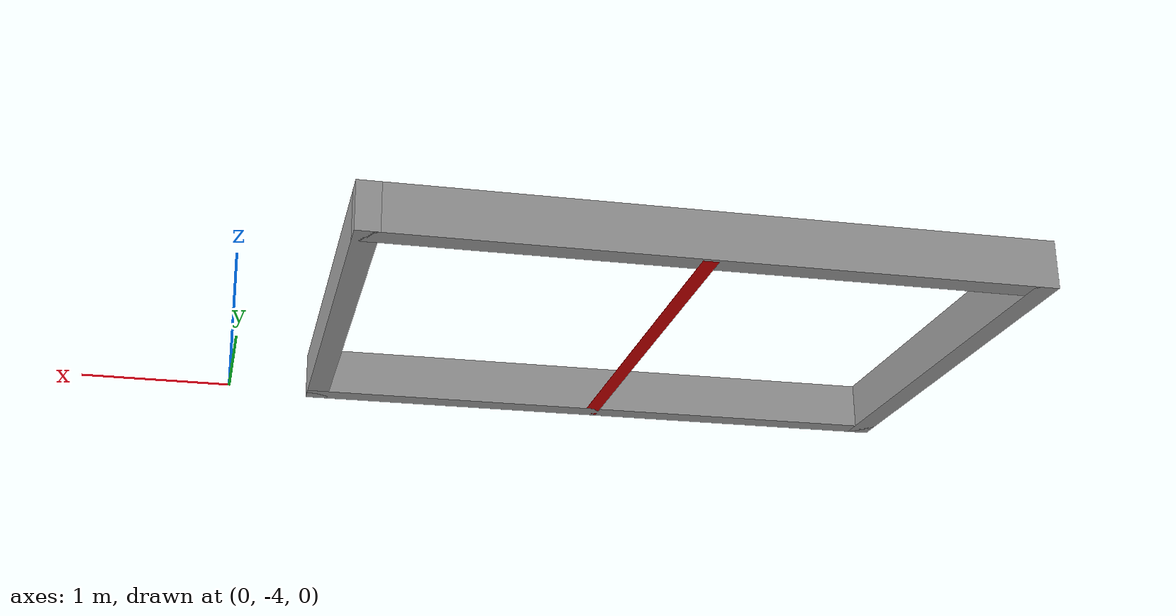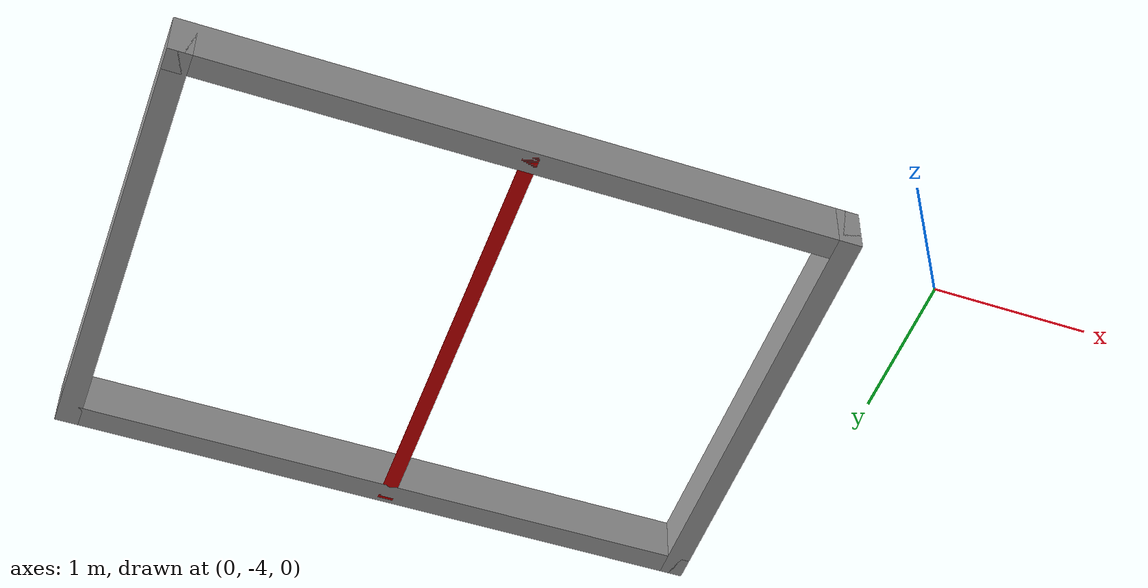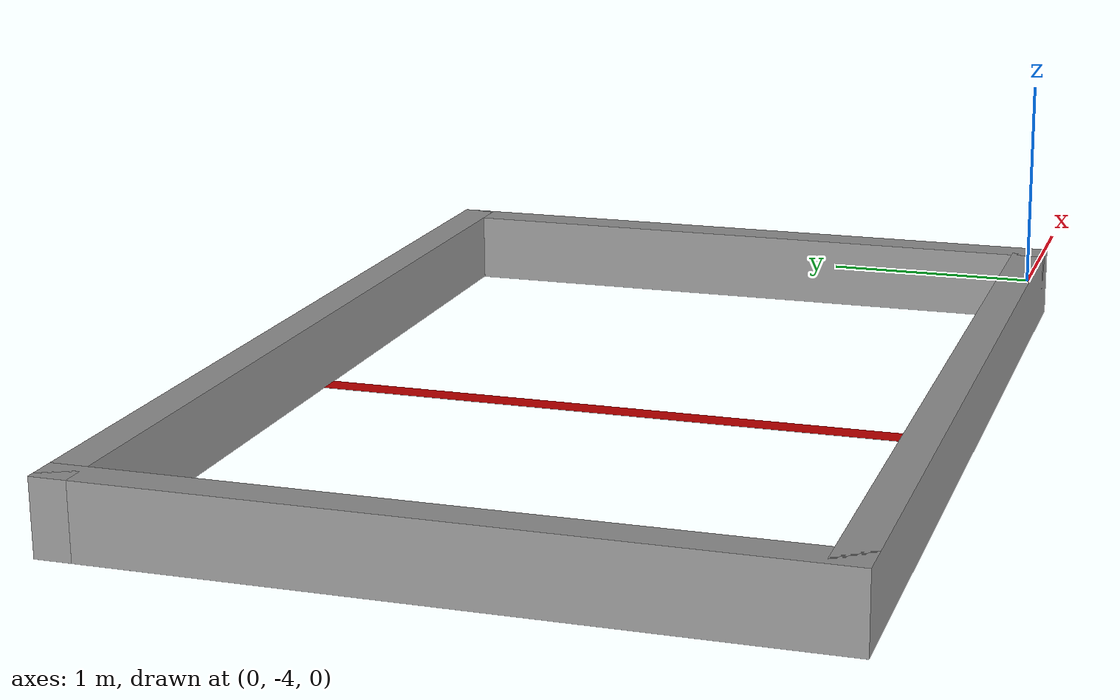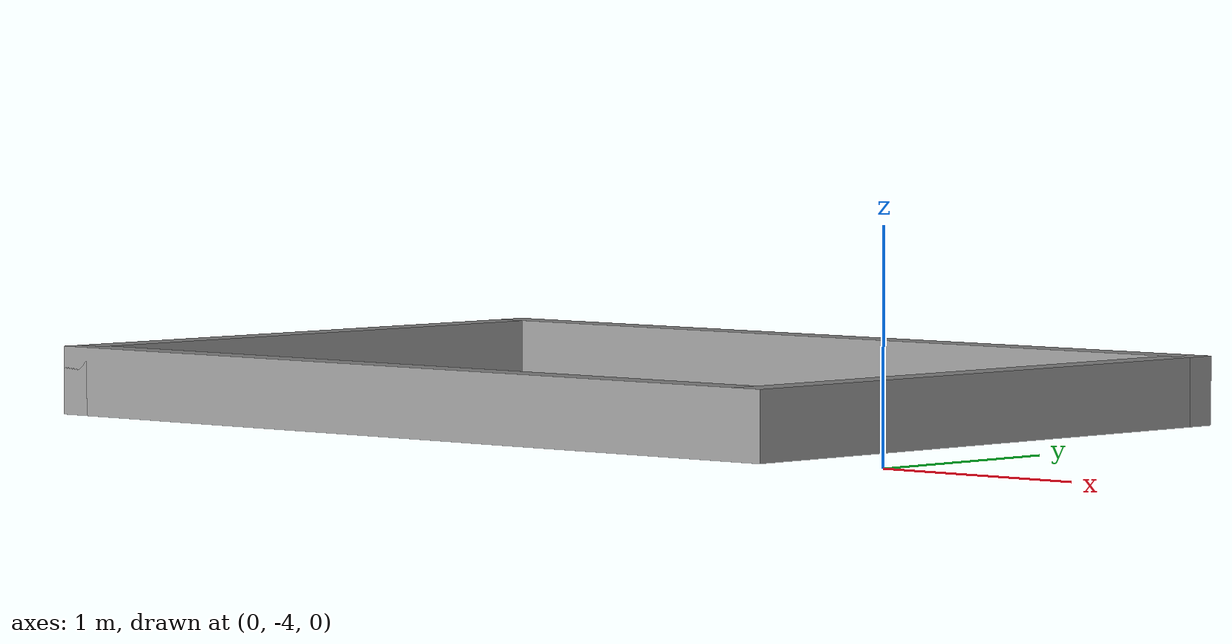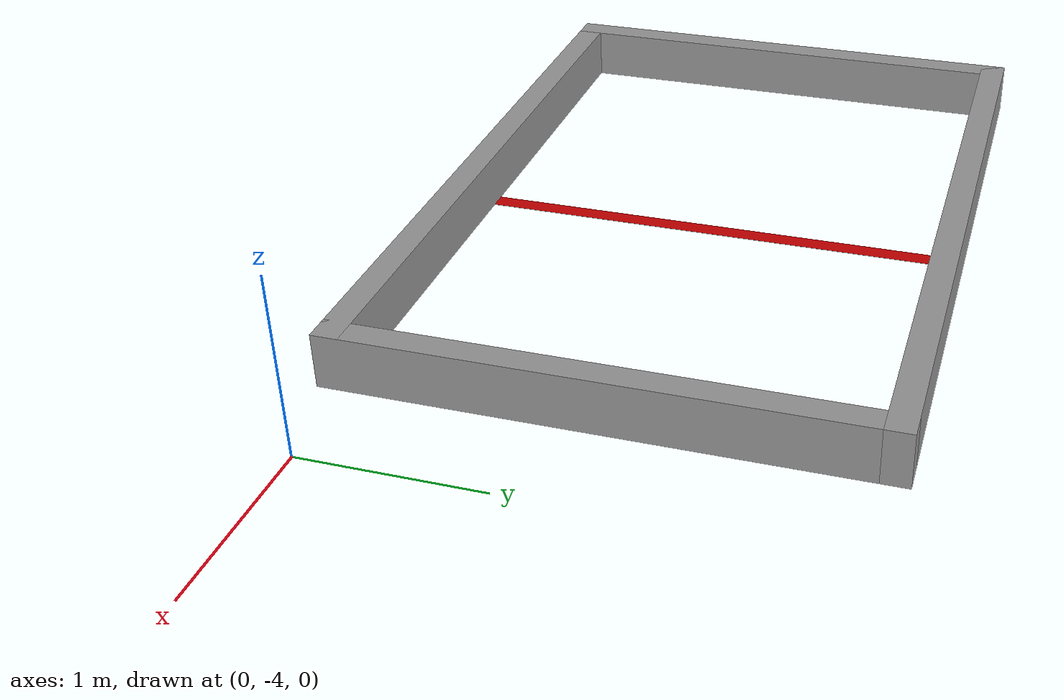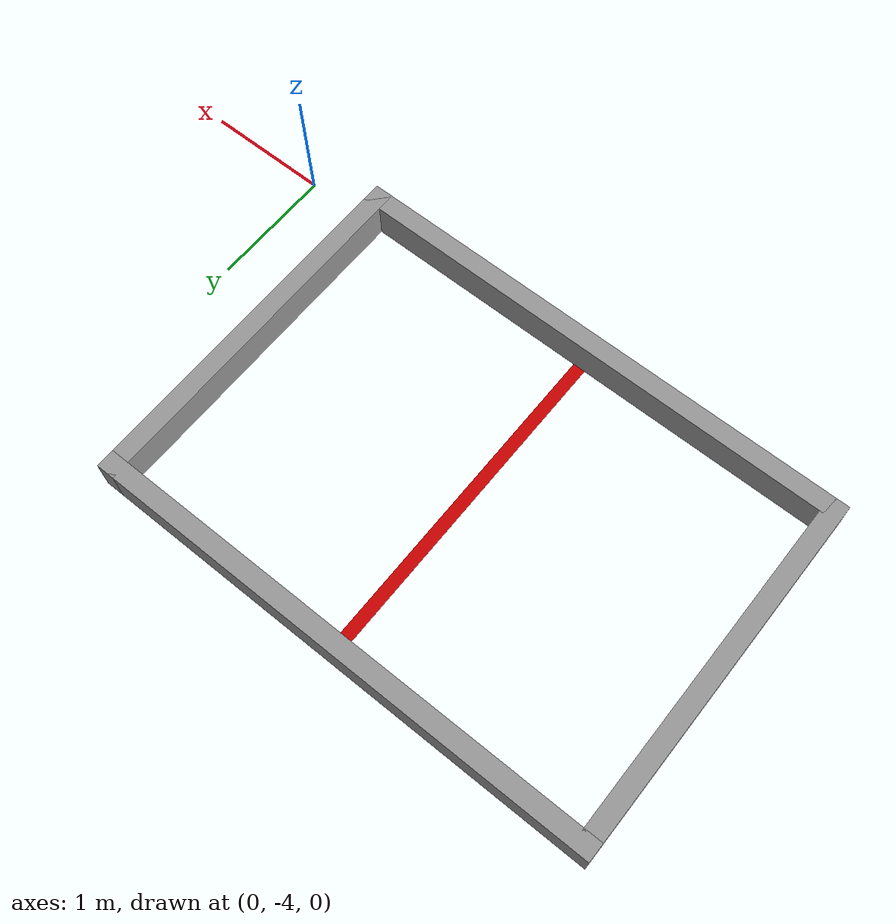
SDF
<?xml version='1.0'?>
<sdf version='1.7'>
  <model name='playground'>
    <pose>-2.3975 -2.0775 0 0 -0 0</pose>
    <link name='Wall_0'>
      <collision name='Wall_0_Collision'>
        <geometry>
          <box>
            <size>3 0.15 0.31</size>
          </box>
        </geometry>
        <pose>0 0 0.155 0 -0 0</pose>
      </collision>
      <visual name='Wall_0_Visual'>
        <pose>0 0 0.155 0 -0 0</pose>
        <geometry>
          <box>
            <size>3 0.15 0.31</size>
          </box>
        </geometry>
        <material>
          <script>
            <uri>file://media/materials/scripts/gazebo.material</uri>
            <name>Gazebo/Grey</name>
          </script>
          <ambient>1 1 1 1</ambient>
        </material>
        <meta>
          <layer>0</layer>
        </meta>
      </visual>
      <pose>-2.3225 -0.5775 0 0 -0 -1.5708</pose>
    </link>
    <link name='Wall_1'>
      <collision name='Wall_1_Collision'>
        <geometry>
          <box>
            <size>4.25 0.15 0.31</size>
          </box>
        </geometry>
        <pose>0 0 0.155 0 -0 0</pose>
      </collision>
      <visual name='Wall_1_Visual'>
        <pose>0 0 0.155 0 -0 0</pose>
        <geometry>
          <box>
            <size>4.25 0.15 0.31</size>
          </box>
        </geometry>
        <material>
          <script>
            <uri>file://media/materials/scripts/gazebo.material</uri>
            <name>Gazebo/Grey</name>
          </script>
          <ambient>1 1 1 1</ambient>
        </material>
        <meta>
          <layer>0</layer>
        </meta>
      </visual>
      <pose>-0.2725 -2.0025 0 0 -0 0</pose>
    </link>
    <link name='Wall_3'>
      <collision name='Wall_3_Collision'>
        <geometry>
          <box>
            <size>4.25 0.15 0.31</size>
          </box>
        </geometry>
        <pose>0 0 0.155 0 -0 0</pose>
      </collision>
      <visual name='Wall_3_Visual'>
        <pose>0 0 0.155 0 -0 0</pose>
        <geometry>
          <box>
            <size>4.25 0.15 0.31</size>
          </box>
        </geometry>
        <material>
          <script>
            <uri>file://media/materials/scripts/gazebo.material</uri>
            <name>Gazebo/Grey</name>
          </script>
          <ambient>1 1 1 1</ambient>
        </material>
        <meta>
          <layer>0</layer>
        </meta>
      </visual>
      <pose>-0.2725 0.8475 0 0 -0 3.14159</pose>
    </link>
    <link name='Wall_5'>
      <collision name='Wall_5_Collision'>
        <geometry>
          <box>
            <size>2.95 0.1 0.001</size>
          </box>
        </geometry>
        <pose>0 0 0.0005 0 -0 0</pose>
      </collision>
      <visual name='Wall_5_Visual'>
        <pose>0 0 0.0005 0 -0 0</pose>
        <geometry>
          <box>
            <size>2.95 0.1 0.001</size>
          </box>
        </geometry>
        <material>
          <script>
            <uri>file://media/materials/scripts/gazebo.material</uri>
            <name>Gazebo/Grey</name>
          </script>
          <ambient>0.8 0 0 1</ambient>
        </material>
        <meta>
          <layer>0</layer>
        </meta>
      </visual>
      <pose>-0.2225 -0.5805 0 0 -0 -1.5708</pose>
    </link>
    <link name='Wall_7'>
      <collision name='Wall_7_Collision'>
        <geometry>
          <box>
            <size>3 0.15 0.31</size>
          </box>
        </geometry>
        <pose>0 0 0.155 0 -0 0</pose>
      </collision>
      <visual name='Wall_7_Visual'>
        <pose>0 0 0.155 0 -0 0</pose>
        <geometry>
          <box>
            <size>3 0.15 0.31</size>
          </box>
        </geometry>
        <material>
          <script>
            <uri>file://media/materials/scripts/gazebo.material</uri>
            <name>Gazebo/Grey</name>
          </script>
          <ambient>1 1 1 1</ambient>
        </material>
        <meta>
          <layer>0</layer>
        </meta>
      </visual>
      <pose>1.7775 -0.5775 0 0 -0 1.5708</pose>
    </link>
    <static>1</static>
  </model>
</sdf>
